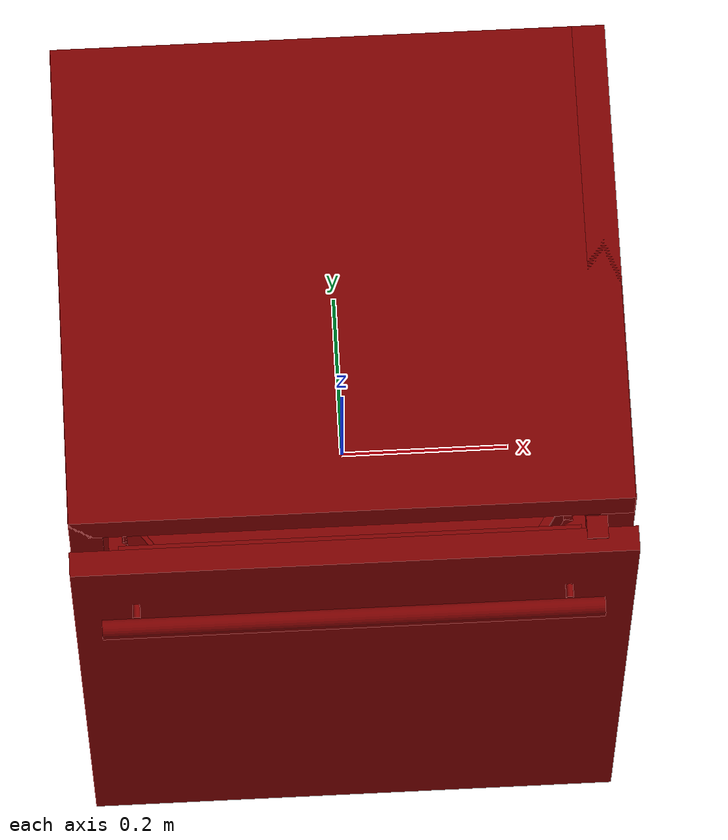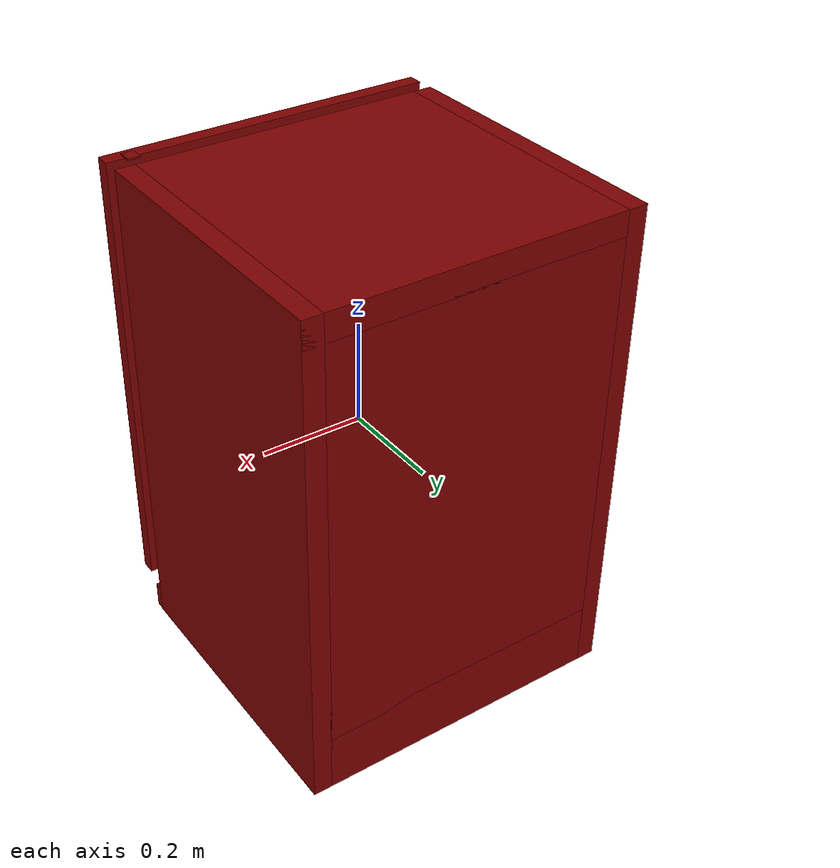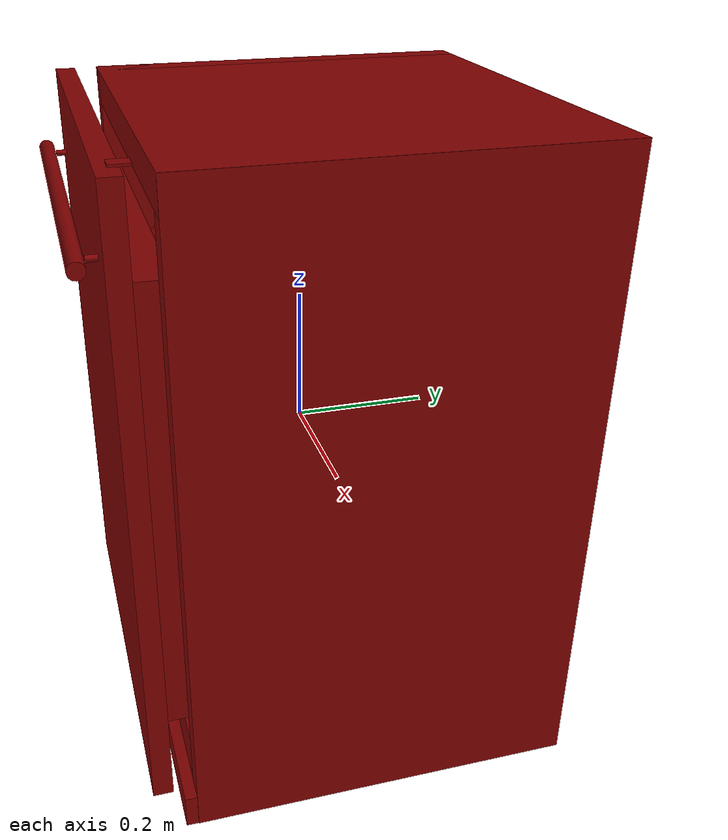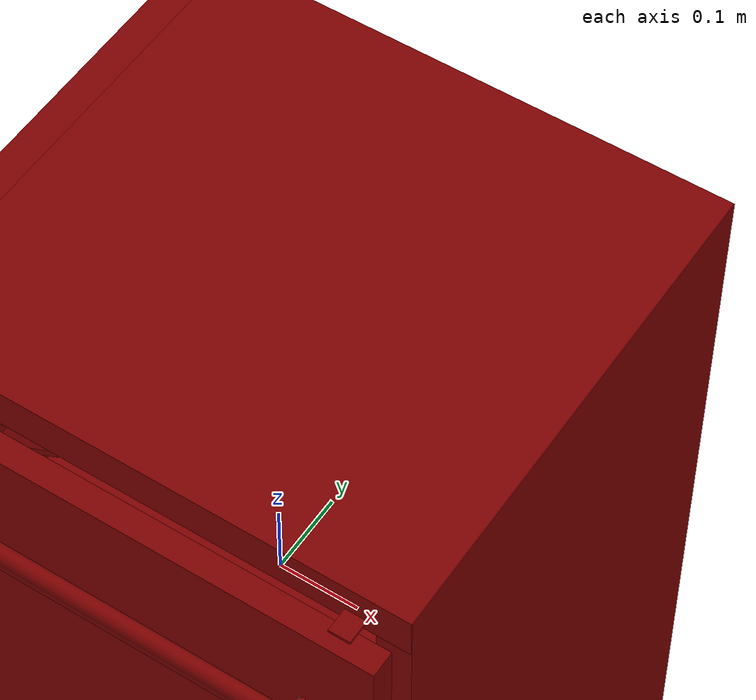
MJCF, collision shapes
<?xml version='1.0' encoding='UTF-8'?>
<mujoco model="model">
  <option timestep="0.002" gravity="0.0 0.0 -9.81"/>
  <compiler angle="radian"/>
  <asset>
    <mesh file="visuals/button_power.obj" name="button_power_vis"/>
    <mesh file="visuals/Body001.obj" name="Body001_vis"/>
    <mesh file="visuals/door.obj" name="door_vis"/>
    <mesh file="visuals/rack0.obj" name="rack0_vis"/>
    <mesh file="visuals/rack1.obj" name="rack1_vis"/>
    <texture file="visuals/T_BC001.png" name="Body001_material" type="2d"/>
    <material name="Body001_material" rgba="1 1 1 1.0" texture="Body001_material" shininess="0.141421377658844" specular="1"/>
    <texture file="visuals/T_BC001.png" name="door_material" type="2d"/>
    <material name="door_material" rgba="1 1 1 1.0" texture="door_material" shininess="0.141421377658844" specular="1"/>
    <texture file="visuals/T_BC001.png" name="button_power_material" type="2d"/>
    <material name="button_power_material" rgba="1 1 1 1.0" texture="button_power_material" shininess="0.141421377658844" specular="0.3103448502657381"/>
    <texture file="visuals/T_BC001.png" name="rack0_material" type="2d"/>
    <material name="rack0_material" rgba="1 1 1 1.0" texture="rack0_material" shininess="0.141421377658844" specular="2"/>
    <texture file="visuals/T_BC001.png" name="rack1_material" type="2d"/>
    <material name="rack1_material" rgba="1 1 1 1.0" texture="rack1_material" shininess="0.141421377658844" specular="2"/>
  </asset>
  <default>
    <default class="visual">
      <geom conaffinity="0" contype="0" group="1" type="mesh"/>
    </default>
    <default class="collision">
      <geom group="0" rgba="0.5 0 0 0.5"/>
    </default>
    <default class="spawn">
      <geom group="0" rgba="1 1 1 0.5" contype="0" conaffinity="0"/>
      <site group="0" rgba="1 1 1 0.5"/>
    </default>
    <default class="region">
      <geom group="1" conaffinity="0" contype="0" rgba="0 1 0 0"/>
    </default>
  </default>
  <worldbody>
    <body>
      <body name="object">
        <geom mesh="Body001_vis" type="mesh" solimp="0.998 0.998 0.001" solref="0.001 1" friction="0.95 0.3 0.1" class="visual" material="Body001_material"/>
        <geom class="collision" type="box" pos="-0.00033861 0.04920121 0.45895837" size="0.3216122090816498 0.2913260757923126 0.025540852919220924" quat="1.0 0.0 0.0 0.0"/>
        <geom class="collision" type="box" pos="-0.30345943 0.04920125 -0.00144687" size="0.018942303955554962 0.2913261353969574 0.4859461486339569" quat="1.0 0.0 0.0 0.0"/>
        <geom class="collision" type="box" pos="0.30304569 0.04920125 -0.00144694" size="0.019206000491976738 0.2913260757923126 0.4859461486339569" quat="1.0 0.0 0.0 0.0"/>
        <geom class="collision" type="box" pos="0.00088732 0.04920129 -0.42205768" size="0.2853509485721588 0.29132604598999023 0.06533540040254593" quat="1.0 0.0 0.0 0.0"/>
        <geom class="collision" type="box" pos="-0.00019383 -0.24256453 -0.46099343" size="0.32146745920181274 0.017336515709757805 0.026399709284305573" quat="1.0 0.0 0.0 0.0"/>
        <geom class="collision" type="box" pos="0.00088733 0.31889218 0.03318142" size="0.2853509187698364 0.021635113283991814 0.40389174222946167" quat="1.0 0.0 0.0 0.0"/>
        <geom class="collision" type="box" pos="0.27221301 0.04417764 -0.22023710" size="0.022095536813139915 0.20158706605434418 0.008034424856305122" quat="1.0 0.0 0.0 0.0"/>
        <geom class="collision" type="box" pos="0.27221301 0.04417764 0.08967227" size="0.022095536813139915 0.20158706605434418 0.008034424856305122" quat="1.0 0.0 0.0 0.0"/>
        <geom class="collision" type="box" pos="-0.27264151 0.04417764 0.08967227" size="0.022095536813139915 0.20158706605434418 0.008034424856305122" quat="1.0 0.0 0.0 0.0"/>
        <geom class="collision" type="box" pos="-0.27264151 0.04417764 -0.22023710" size="0.022095536813139915 0.20158706605434418 0.008034424856305122" quat="1.0 0.0 0.0 0.0"/>
        <body name="door">
          <joint axis="1.0 0.0 0.0" pos="-7.501e-05 -0.3044528126231456 -0.4118565772314453" limited="true" name="door_joint" range="0.0 0.6235987755982988" type="hinge" damping="1" frictionloss="10" armature="1" stiffness="2"/>
          <geom mesh="door_vis" type="mesh" solimp="0.998 0.998 0.001" solref="0.001 1" friction="0.95 0.3 0.1" class="visual" material="door_material"/>
          <geom class="collision" type="cylinder" pos="-0.00264612 -0.33220387 0.37136085" size="0.011335561983287334 0.28749722242355347" quat="0.7071068286895752 -0.0 0.7071067690849304 0.0" name="door_handle_main"/>
          <geom class="collision" type="cylinder" pos="0.24525447 -0.30870086 0.37117727" size="0.004390311427414417 0.011076605878770351" quat="0.5 0.5 0.4999999701976776 -0.5"/>
          <geom class="collision" type="cylinder" pos="-0.25072735 -0.30880937 0.37117727" size="0.004390311427414417 0.011076605878770351" quat="0.5 0.5 0.4999999701976776 -0.5"/>
          <geom class="collision" type="box" pos="-0.00200707 -0.25105971 0.00691397" size="0.2672194838523865 0.028157562017440796 0.33795034885406494" quat="1.0 0.0 0.0 0.0"/>
          <geom class="collision" type="box" pos="-0.00007501 -0.28994644 0.03585346" size="0.3223266899585724 0.01450637262314558 0.4477100372314453" quat="1.0 0.0 0.0 0.0" name="door_main"/>
          <body name="button_power">
            <joint axis="0.0 0.0 -1.0" pos="0.27538180 -0.27316856 0.48460795" limited="true" name="button_power_joint" range="0.0 0.003" type="slide" damping="1" frictionloss="1" armature=".01" springref="-1" stiffness="4"/>
            <geom mesh="button_power_vis" type="mesh" solimp="0.998 0.998 0.001" solref="0.001 1" friction="0.95 0.3 0.1" class="visual" material="button_power_material"/>
            <geom class="collision" type="box" pos="0.27540818 -0.27568230 0.48590667" size="0.01196988858282566 0.013450415804982185 0.0014864085242152214" quat="1.0 0.0 0.0 0.0"/>
          </body>
        </body>
        <body name="rack0">
          <geom class="region" name="reg_rack0" type="box" pos="0.00144699999999999 0.031512255 -0.04722028" size="0.22447878999999998 0.204765205 0.15133346"/>
          <joint axis="0.0 -1.0 0.0" pos="-0.00277587 0.02694640 -0.13611071" limited="true" name="rack0_joint" range="0.0 0.13699999999999998" type="slide" damping="1" frictionloss="1" armature=".01" stiffness="0.05"/>
          <geom mesh="rack0_vis" type="mesh" solimp="0.998 0.998 0.001" solref="0.001 1" friction="0.95 0.3 0.1" class="visual" material="rack0_material"/>
          <geom class="collision" type="box" pos="-0.00090447 -0.20799863 -0.13308432" size="0.1814403384923935 0.005505991168320179 0.06960348039865494" quat="1.0 0.0 0.0 0.0"/>
          <geom class="collision" type="box" pos="-0.23798600 -0.18008319 -0.11109309" size="0.04608502611517906 0.034626297652721405 0.00293213059194386" quat="0.6703308820724487 0.22506999969482422 -0.6703308820724487 0.22506998479366302"/>
          <geom class="collision" type="box" pos="0.00038974 0.02371935 -0.20200012" size="0.18228940665721893 0.23159919679164886 0.0044463700614869595" quat="1.0 0.0 0.0 0.0"/>
          <geom class="collision" type="box" pos="-0.26051050 0.05264001 -0.11137357" size="0.005374429281800985 0.20445707440376282 0.04580455273389816" quat="1.0 0.0 0.0 0.0"/>
          <geom class="collision" type="box" pos="0.02533259 -0.15933740 -0.16822885" size="0.03280595690011978 0.17612867057323456 0.0015254621393978596" quat="0.3746052086353302 0.599725604057312 -0.5997262597084045 0.3746044933795929"/>
          <geom class="collision" type="box" pos="0.02533259 -0.03687717 -0.16883879" size="0.03280595690011978 0.17612867057323456 0.0015254623722285032" quat="0.5994250774383545 0.3750862181186676 -0.37508624792099 0.5994248986244202"/>
          <geom class="collision" type="box" pos="0.02533259 0.08738039 -0.16867106" size="0.03280595690011978 0.17612867057323456 0.0015254623722285032" quat="0.6009702086448669 0.372605562210083 -0.3726055920124054 0.6009700298309326"/>
          <geom class="collision" type="box" pos="0.02533259 0.17529511 -0.16586496" size="0.03437110036611557 0.17612867057323456 0.0015254623722285032" quat="0.4398217499256134 0.5536757111549377 -0.5536763072013855 0.4398210644721985"/>
          <geom class="collision" type="box" pos="0.16680265 0.26377288 -0.13322966" size="0.09084472060203552 0.0022920516785234213 0.06556551903486252" quat="1.0 0.0 0.0 0.0"/>
          <geom class="collision" type="box" pos="0.06108884 0.25211769 -0.13322963" size="0.06556551903486252 0.018843065947294235 0.005374422296881676" quat="0.6344218254089355 0.3122643232345581 0.6344217658042908 -0.3122642934322357"/>
          <geom class="collision" type="box" pos="-0.05664826 0.25211769 -0.13322963" size="0.06556551903486252 0.018843065947294235 0.005374422296881676" quat="0.6344218254089355 0.3122643232345581 -0.6344217658042908 0.3122642934322357"/>
          <geom class="collision" type="box" pos="-0.25553286 0.05225331 -0.16638931" size="0.014618505723774433 0.20484375953674316 0.004902960266917944" quat="0.482354998588562 -5.884752596330145e-08 -0.8759758472442627 -8.52907220405541e-08"/>
          <geom class="collision" type="box" pos="0.00188560 0.24125274 -0.13322966" size="0.046423185616731644 0.005374431610107422 0.06556552648544312" quat="1.0 0.0 0.0 0.0"/>
          <geom class="collision" type="box" pos="-0.16973889 0.26367846 -0.13322966" size="0.0982215404510498 0.0023864805698394775 0.06556552648544312" quat="1.0 0.0 0.0 0.0"/>
          <geom class="collision" type="box" pos="0.23306894 -0.17841165 -0.06804737" size="0.0032838964834809303 0.03610019385814667 0.005019412841647863" quat="0.6783162951469421 0.19971753656864166 0.6783161759376526 -0.19971750676631927"/>
          <geom class="collision" type="box" pos="0.23411015 -0.17962095 -0.11109309" size="0.04608502611517906 0.034626297652721405 0.00293213059194386" quat="0.6814671158790588 0.18868668377399445 0.6814669966697693 -0.18868663907051086"/>
          <geom class="collision" type="box" pos="0.18214753 -0.21002176 -0.11109309" size="0.029871802777051926 0.003071033861488104 0.04608503356575966" quat="1.0 0.0 0.0 0.0"/>
          <geom class="collision" type="box" pos="0.23224531 -0.17698728 -0.13312053" size="0.015675075352191925 0.039374999701976776 0.002932131290435791" quat="0.6765477657318115 0.20562869310379028 0.6765477061271667 -0.2056286782026291"/>
          <geom class="collision" type="box" pos="0.24725349 0.05313385 -0.18941628" size="0.004977009259164333 0.20441877841949463 0.014618507586419582" quat="1.0 0.0 0.0 0.0"/>
          <geom class="collision" type="box" pos="0.25398046 0.05313385 -0.16638931" size="0.014618505723774433 0.20441877841949463 0.004902959801256657" quat="0.4823552072048187 -5.8847568595865596e-08 0.8759757280349731 8.529075756769089e-08"/>
          <geom class="collision" type="box" pos="0.25895810 0.05352055 -0.11137357" size="0.005374429281800985 0.20403210818767548 0.04580455273389816" quat="1.0 0.0 0.0 0.0"/>
          <geom class="collision" type="box" pos="-0.24880589 0.05225331 -0.18941628" size="0.004977009259164333 0.20484375953674316 0.014618507586419582" quat="1.0 0.0 0.0 0.0"/>
          <geom class="collision" type="box" pos="0.26324880 0.05352055 -0.06804737" size="0.005019418429583311 0.20403210818767548 0.003283897414803505" quat="1.0 0.0 0.0 0.0"/>
          <geom class="collision" type="box" pos="0.16723332 0.26405147 -0.06804742" size="0.10065902024507523 0.0032006658148020506 0.0032839160412549973" quat="1.0 0.0 0.0 0.0"/>
          <geom class="collision" type="box" pos="0.05618101 0.25055748 -0.06804734" size="0.0032838964834809303 0.018516186624765396 0.0050193932838737965" quat="0.2988363206386566 0.6408563852310181 -0.29883629083633423 0.6408563256263733"/>
          <geom class="collision" type="box" pos="-0.05664751 0.25167459 -0.06804734" size="0.0032838964834809303 0.018516184762120247 0.005019392818212509" quat="0.6408563852310181 0.2988363206386566 -0.6408563256263733 0.29883629083633423"/>
          <geom class="collision" type="box" pos="0.00228007 0.24083769 -0.06804734" size="0.046150531619787216 0.005019402131438255 0.003283905563876033" quat="1.0 0.0 0.0 0.0"/>
          <geom class="collision" type="box" pos="-0.16748257 0.26461452 -0.06804736" size="0.10065902024507523 0.0026377153117209673 0.0032839160412549973" quat="1.0 0.0 0.0 0.0"/>
          <geom class="collision" type="box" pos="-0.26480120 0.05378548 -0.06804737" size="0.005019418429583311 0.20560257136821747 0.003283897414803505" quat="1.0 0.0 0.0 0.0"/>
          <geom class="collision" type="box" pos="-0.22844961 -0.17786613 -0.13246046" size="0.015675075352191925 0.03937499597668648 0.0029321310576051474" quat="0.661539614200592 0.24973070621490479 -0.6615394949913025 0.24973064661026"/>
          <geom class="collision" type="box" pos="-0.18520962 -0.21002176 -0.11109309" size="0.03366275504231453 0.0030710340943187475 0.04608503356575966" quat="1.0 0.0 0.0 0.0"/>
          <geom class="collision" type="box" pos="0.00133487 0.05231736 -0.20200012" size="0.25194963812828064 0.20514939725399017 0.0044463700614869595" quat="1.0 0.0 0.0 0.0"/>
          <geom class="collision" type="box" pos="-0.21090901 0.03907143 -0.08319507" size="0.048206619918346405 0.18564490973949432 0.003815657226368785" quat="0.9674090147018433 -1.701110008411888e-08 -0.2532189190387726 3.096777945188478e-08"/>
          <geom class="collision" type="cylinder" pos="-0.25037157 -0.09371047 -0.19734242" size="0.014364920556545258 0.007440432906150818" quat="0.7071068286895752 -4.750302551315144e-08 -0.7071067094802856 -4.7503014855010406e-08"/>
          <geom class="collision" type="cylinder" pos="-0.25037154 0.18366548 -0.19734242" size="0.014364920556545258 0.007440432906150818" quat="0.7071068286895752 -4.750302551315144e-08 -0.7071067094802856 -4.7503014855010406e-08"/>
          <geom class="collision" type="cylinder" pos="0.25075248 -0.09371053 -0.19734250" size="0.014364920556545258 0.007440432906150818" quat="0.7071068286895752 -4.750302551315144e-08 -0.7071067094802856 -4.7503014855010406e-08"/>
          <geom class="collision" type="cylinder" pos="0.25075254 0.18366542 -0.19734250" size="0.014364920556545258 0.007440432906150818" quat="0.7071068286895752 -4.750302551315144e-08 -0.7071067094802856 -4.7503014855010406e-08"/>
        </body>
        <body name="rack1">
          <geom class="region" name="reg_rack1" type="box" pos="0.0014469949999999926 0.03171971500000001 0.272711715" size="0.224478795 0.204972665 0.161705795"/>
          <joint axis="0.0 -1.0 0.0" pos="-0.00277587 0.02694640 0.17344895" limited="true" name="rack1_joint" range="0.0 0.3154" type="slide" damping="1" frictionloss="1" armature=".01" stiffness="0.05"/>
          <geom mesh="rack1_vis" type="mesh" solimp="0.998 0.998 0.001" solref="0.001 1" friction="0.95 0.3 0.1" class="visual" material="rack1_material"/>
          <geom class="collision" type="box" pos="-0.00090447 -0.20799863 0.17647534" size="0.1814403384923935 0.005505991168320179 0.06960348039865494" quat="1.0 0.0 0.0 0.0"/>
          <geom class="collision" type="box" pos="-0.23798600 -0.18008319 0.19846658" size="0.04608502611517906 0.034626297652721405 0.00293213059194386" quat="0.6703308820724487 0.22506999969482422 -0.6703308820724487 0.22506998479366302"/>
          <geom class="collision" type="box" pos="0.00038974 -0.01018835 0.10722792" size="0.18228940665721893 0.19769148528575897 0.004114745184779167" quat="1.0 0.0 0.0 0.0"/>
          <geom class="collision" type="box" pos="-0.26051050 0.05264001 0.19818609" size="0.005374429281800985 0.20445707440376282 0.04580455273389816" quat="1.0 0.0 0.0 0.0"/>
          <geom class="collision" type="box" pos="0.02533259 -0.15933740 0.14133082" size="0.03280595690011978 0.17612867057323456 0.0015254621393978596" quat="0.3746052086353302 0.599725604057312 -0.5997262597084045 0.3746044933795929"/>
          <geom class="collision" type="box" pos="0.02533259 -0.03687717 0.14072088" size="0.03280595690011978 0.17612867057323456 0.0015254623722285032" quat="0.5994250774383545 0.3750862181186676 -0.37508624792099 0.5994248986244202"/>
          <geom class="collision" type="box" pos="0.02533259 0.08738039 0.14088861" size="0.03280595690011978 0.17612867057323456 0.0015254623722285032" quat="0.6009702086448669 0.372605562210083 -0.3726055920124054 0.6009700298309326"/>
          <geom class="collision" type="box" pos="0.02533259 0.17529511 0.14369471" size="0.03437110036611557 0.17612867057323456 0.0015254623722285032" quat="0.4398217499256134 0.5536757111549377 -0.5536763072013855 0.4398210644721985"/>
          <geom class="collision" type="box" pos="0.16680265 0.26069051 0.17633001" size="0.09084472060203552 0.005374431144446135 0.06556551903486252" quat="1.0 0.0 0.0 0.0"/>
          <geom class="collision" type="box" pos="0.06108884 0.25211769 0.17633003" size="0.06556551903486252 0.018843065947294235 0.005374422296881676" quat="0.6344218254089355 0.3122643232345581 0.6344217658042908 -0.3122642934322357"/>
          <geom class="collision" type="box" pos="-0.05664826 0.25211769 0.17633003" size="0.06556551903486252 0.018843065947294235 0.005374422296881676" quat="0.6344218254089355 0.3122643232345581 -0.6344217658042908 0.3122642934322357"/>
          <geom class="collision" type="box" pos="-0.25553286 0.05225331 0.14317035" size="0.014618505723774433 0.20484375953674316 0.004902960266917944" quat="0.482354998588562 -5.884752596330145e-08 -0.8759758472442627 -8.52907220405541e-08"/>
          <geom class="collision" type="box" pos="0.00188560 0.24125274 0.17633001" size="0.046423185616731644 0.005374431610107422 0.06556552648544312" quat="1.0 0.0 0.0 0.0"/>
          <geom class="collision" type="box" pos="-0.16973889 0.26069051 0.17633001" size="0.0982215404510498 0.005374431610107422 0.06556552648544312" quat="1.0 0.0 0.0 0.0"/>
          <geom class="collision" type="box" pos="0.23306894 -0.17841165 0.24151229" size="0.0032838964834809303 0.03610019385814667 0.005019412841647863" quat="0.6783162951469421 0.19971753656864166 0.6783161759376526 -0.19971750676631927"/>
          <geom class="collision" type="box" pos="0.23411015 -0.17962095 0.19846658" size="0.04608502611517906 0.034626297652721405 0.00293213059194386" quat="0.6814671158790588 0.18868668377399445 0.6814669966697693 -0.18868663907051086"/>
          <geom class="collision" type="box" pos="0.18214753 -0.21002176 0.19846658" size="0.029871802777051926 0.003071033861488104 0.04608503356575966" quat="1.0 0.0 0.0 0.0"/>
          <geom class="collision" type="box" pos="0.23224531 -0.17698728 0.17643915" size="0.015675075352191925 0.039374999701976776 0.002932131290435791" quat="0.6765477657318115 0.20562869310379028 0.6765477061271667 -0.2056286782026291"/>
          <geom class="collision" type="box" pos="0.24725349 0.05313385 0.12014339" size="0.004977009259164333 0.20441877841949463 0.014618507586419582" quat="1.0 0.0 0.0 0.0"/>
          <geom class="collision" type="box" pos="0.25398046 0.05313385 0.14317035" size="0.014618505723774433 0.20441877841949463 0.004902959801256657" quat="0.4823552072048187 -5.8847568595865596e-08 0.8759757280349731 8.529075756769089e-08"/>
          <geom class="collision" type="box" pos="0.25895810 0.05352055 0.19818609" size="0.005374429281800985 0.20403210818767548 0.04580455273389816" quat="1.0 0.0 0.0 0.0"/>
          <geom class="collision" type="box" pos="-0.24880589 0.05225331 0.12014339" size="0.004977009259164333 0.20484375953674316 0.014618507586419582" quat="1.0 0.0 0.0 0.0"/>
          <geom class="collision" type="box" pos="0.26324880 0.05352055 0.24151229" size="0.005019418429583311 0.20403210818767548 0.003283897414803505" quat="1.0 0.0 0.0 0.0"/>
          <geom class="collision" type="box" pos="0.16723332 0.26223272 0.24151225" size="0.10065902024507523 0.005019412375986576 0.0032839160412549973" quat="1.0 0.0 0.0 0.0"/>
          <geom class="collision" type="box" pos="0.05618101 0.25055748 0.24151232" size="0.0032838964834809303 0.018516186624765396 0.0050193932838737965" quat="0.2988363206386566 0.6408563852310181 -0.29883629083633423 0.6408563256263733"/>
          <geom class="collision" type="box" pos="-0.05664751 0.25167459 0.24151232" size="0.0032838964834809303 0.018516184762120247 0.005019392818212509" quat="0.6408563852310181 0.2988363206386566 -0.6408563256263733 0.29883629083633423"/>
          <geom class="collision" type="box" pos="0.00228007 0.24083769 0.24151232" size="0.046150531619787216 0.005019402131438255 0.003283905563876033" quat="1.0 0.0 0.0 0.0"/>
          <geom class="collision" type="box" pos="-0.16748257 0.26223284 0.24151231" size="0.10065902024507523 0.005019412375986576 0.0032839160412549973" quat="1.0 0.0 0.0 0.0"/>
          <geom class="collision" type="box" pos="-0.26480120 0.05378548 0.24151229" size="0.005019418429583311 0.20560257136821747 0.003283897414803505" quat="1.0 0.0 0.0 0.0"/>
          <geom class="collision" type="box" pos="-0.22844961 -0.17786613 0.17709921" size="0.015675075352191925 0.03937499597668648 0.0029321310576051474" quat="0.661539614200592 0.24973070621490479 -0.6615394949913025 0.24973064661026"/>
          <geom class="collision" type="box" pos="-0.18520962 -0.21002176 0.19846658" size="0.03366275504231453 0.0030710340943187475 0.04608503356575966" quat="1.0 0.0 0.0 0.0"/>
          <geom class="collision" type="box" pos="0.00133487 0.05231736 0.10755955" size="0.25194963812828064 0.20514939725399017 0.0044463700614869595" quat="1.0 0.0 0.0 0.0"/>
          <geom class="collision" type="box" pos="-0.21090901 0.03907143 0.22636459" size="0.048206619918346405 0.18564490973949432 0.003815657226368785" quat="0.9674090147018433 -1.701110008411888e-08 -0.2532189190387726 3.096777945188478e-08"/>
          <geom class="collision" type="cylinder" pos="-0.25037157 -0.09371047 0.11221725" size="0.014364920556545258 0.007440432906150818" quat="0.7071068286895752 -4.750302551315144e-08 -0.7071067094802856 -4.7503014855010406e-08"/>
          <geom class="collision" type="cylinder" pos="-0.25037154 0.18366548 0.11221725" size="0.014364920556545258 0.007440432906150818" quat="0.7071068286895752 -4.750302551315144e-08 -0.7071067094802856 -4.7503014855010406e-08"/>
          <geom class="collision" type="cylinder" pos="0.25075248 -0.09371053 0.11221715" size="0.014364920556545258 0.007440432906150818" quat="0.7071068286895752 -4.750302551315144e-08 -0.7071067094802856 -4.7503014855010406e-08"/>
          <geom class="collision" type="cylinder" pos="0.25075254 0.18366542 0.11221715" size="0.014364920556545258 0.007440432906150818" quat="0.7071068286895752 -4.750302551315144e-08 -0.7071067094802856 -4.7503014855010406e-08"/>
        </body>
        <geom class="region" name="reg_int" type="box" pos="-0.0002514350000000082 0.03423021000000001 0.04081333499999998" size="0.245514785 0.25607217000000004 0.38701815500000003"/>
        <geom class="region" name="reg_main" type="box" pos="-7.502000000000897e-05 0.012175689999999989 -6.499999999354245e-08" size="0.32332669 0.32935168000000004 0.488393085"/>
      </body>
    </body>
  </worldbody>
  <actuator>
    <motor name="door_joint_actuator" joint="door_joint" gear="100"/>
    <motor name="rack0_joint_actuator" joint="rack0_joint" gear="50"/>
    <motor name="rack1_joint_actuator" joint="rack1_joint" gear="50"/>
    <motor name="button_power_joint_actuator" joint="button_power_joint" gear="0.5"/>
  </actuator>
</mujoco>
